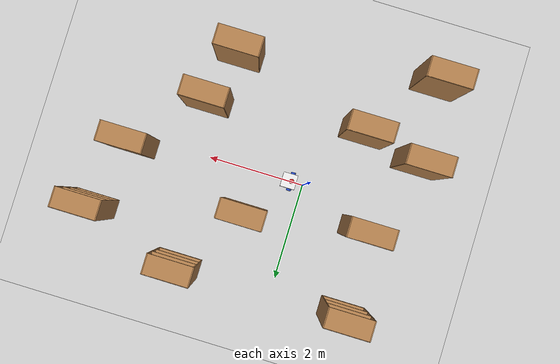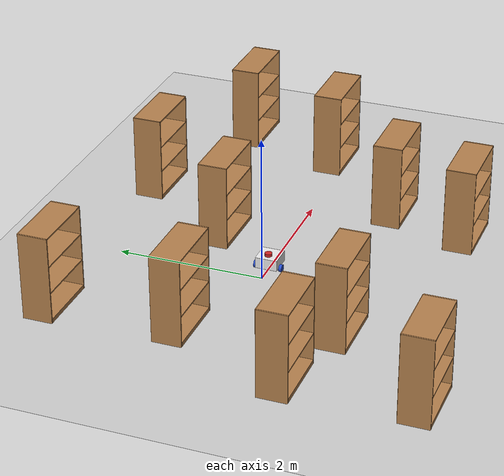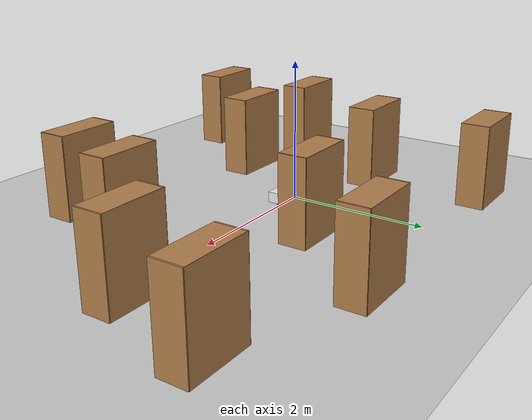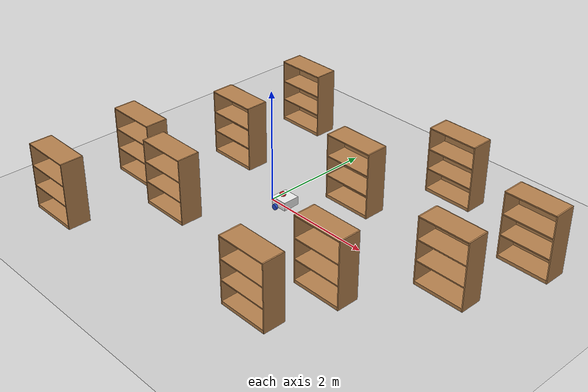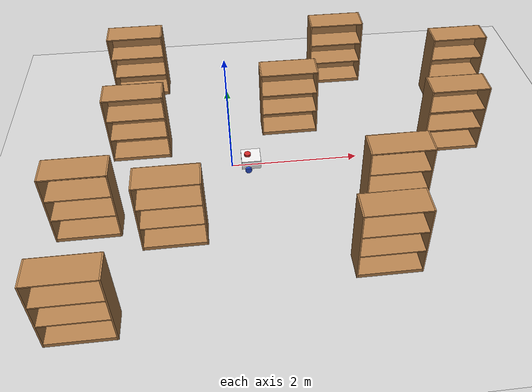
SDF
<sdf version="1.7">
 <world name="default">
  <light name="sun" type="directional">
   <pose>0 0 10 0 -0 0</pose>
   <diffuse>0.8 0.8 0.8 1</diffuse>
   <specular>0.2 0.2 0.2 1</specular>
   <attenuation>
    <range>1000</range>
    <constant>0.9</constant>
    <linear>0.01</linear>
    <quadratic>0.001</quadratic>
   </attenuation>
   <direction>-0.5 0.1 -0.9</direction>
   <spot><inner_angle>0</inner_angle><outer_angle>0</outer_angle><falloff>0</falloff></spot>
  </light>
  <model name="ground_plane">
   <static>1</static>
   <link name="link">
    <collision name="collision">
     <geometry><plane><normal>0 0 1</normal><size>100 100</size></plane></geometry>
     <surface>
      <contact><collide_bitmask>65535</collide_bitmask></contact>
      <friction><ode><mu>100</mu><mu2>50</mu2></ode></friction>
     </surface>
    </collision>
    <visual name="visual">
     <cast_shadows>0</cast_shadows>
     <geometry><plane><normal>0 0 1</normal><size>100 100</size></plane></geometry>
     <material>
      <script><uri>file://media/materials/scripts/gazebo.material</uri><name>Gazebo/Grey</name></script>
     </material>
    </visual>
   </link>
  </model>
  <gravity>0 0 -9.8</gravity>
  <magnetic_field>6e-06 2.3e-05 -4.2e-05</magnetic_field>
  <atmosphere type="adiabatic"/>
  <physics type="ode">
   <max_step_size>0.001</max_step_size>
   <real_time_factor>1</real_time_factor>
   <real_time_update_rate>1000</real_time_update_rate>
  </physics>
  <scene><ambient>0.4 0.4 0.4 1</ambient><background>0.7 0.7 0.7 1</background><shadows>1</shadows></scene>
  <audio><device>default</device></audio>
  <spherical_coordinates>
   <surface_model>EARTH_WGS84</surface_model>
   <latitude_deg>0</latitude_deg>
   <longitude_deg>0</longitude_deg>
   <elevation>0</elevation>
   <heading_deg>0</heading_deg>
  </spherical_coordinates>
  <model name="my_bot">
   <link name="base_link">
    <inertial>
     <pose>0.055714 0 0.078571 0 -0 0</pose>
     <mass>0.7</mass>
     <inertia>
      <ixx>0.0064169</ixx>
      <ixy>0</ixy>
      <ixz>0.00118929</ixz>
      <iyy>0.00745405</iyy>
      <iyz>0</iyz>
      <izz>0.00876214</izz>
     </inertia>
    </inertial>
    <collision name="base_link_fixed_joint_lump__chassis_collision">
     <pose>0.05 0 0.075 0 -0 0</pose>
     <geometry><box><size>0.3 0.3 0.15</size></box></geometry>
    </collision>
    <collision name="base_link_fixed_joint_lump__caster_wheel_collision_1">
     <pose>0.14 0 0 0 -0 0</pose>
     <geometry><sphere><radius>0.05</radius></sphere></geometry>
     <surface><friction><ode><mu>0.001</mu><mu2>0.001</mu2></ode></friction></surface>
    </collision>
    <collision name="base_link_fixed_joint_lump__laser_frame_collision_2">
     <pose>0 0 0.175 0 -0 0</pose>
     <geometry><cylinder><length>0.04</length><radius>0.05</radius></cylinder></geometry>
    </collision>
    <visual name="base_link_fixed_joint_lump__chassis_visual">
     <pose>0.05 0 0.075 0 -0 0</pose>
     <geometry><box><size>0.3 0.3 0.15</size></box></geometry>
     <material>
      <script><name>Gazebo/White</name><uri>file://media/materials/scripts/gazebo.material</uri></script>
     </material>
    </visual>
    <visual name="base_link_fixed_joint_lump__caster_wheel_visual_1">
     <pose>0.14 0 0 0 -0 0</pose>
     <geometry><sphere><radius>0.05</radius></sphere></geometry>
     <material>
      <script><name>Gazebo/Black</name><uri>file://media/materials/scripts/gazebo.material</uri></script>
     </material>
    </visual>
    <visual name="base_link_fixed_joint_lump__laser_frame_visual_2">
     <pose>0 0 0.175 0 -0 0</pose>
     <geometry><cylinder><length>0.04</length><radius>0.05</radius></cylinder></geometry>
     <material>
      <script><name>Gazebo/Red</name><uri>file://media/materials/scripts/gazebo.material</uri></script>
     </material>
    </visual>
    <sensor name="laser" type="ray">
     <visualize>1</visualize>
     <update_rate>10</update_rate>
     <ray>
      <scan>
       <horizontal>
        <samples>360</samples>
        <min_angle>-3.14</min_angle>
        <max_angle>3.14</max_angle>
        <resolution>1</resolution>
       </horizontal>
       <vertical><samples>1</samples><min_angle>0</min_angle><max_angle>0</max_angle></vertical>
      </scan>
      <range><min>0.3</min><max>12</max></range>
     </ray>
     <plugin name="laser_controller" filename="libgazebo_ros_ray_sensor.so">
      <ros><argument>~/out:=scan</argument></ros>
      <output_type>sensor_msgs/LaserScan</output_type>
      <frame_name>laser_frame</frame_name>
     </plugin>
     <pose>0 0 0.175 0 -0 0</pose>
    </sensor>
   </link>
   <joint name="left_wheel_joint" type="revolute">
    <pose relative_to="base_link">0 0.175 0 -1.5708 0 0</pose>
    <parent>base_link</parent>
    <child>left_wheel</child>
    <axis>
     <xyz>0 0 1</xyz>
     <limit><lower>-1e+16</lower><upper>1e+16</upper></limit>
     <dynamics><spring_reference>0</spring_reference><spring_stiffness>0</spring_stiffness></dynamics>
    </axis>
   </joint>
   <link name="left_wheel">
    <pose relative_to="left_wheel_joint">0 0 0 0 -0 0</pose>
    <inertial>
     <mass>0.1</mass>
     <inertia>
      <ixx>8.33333e-05</ixx>
      <ixy>0</ixy>
      <ixz>0</ixz>
      <iyy>8.33333e-05</iyy>
      <iyz>0</iyz>
      <izz>0.000125</izz>
     </inertia>
    </inertial>
    <collision name="left_wheel_collision">
     <geometry><cylinder><length>0.04</length><radius>0.05</radius></cylinder></geometry>
    </collision>
    <visual name="left_wheel_visual">
     <geometry><cylinder><length>0.04</length><radius>0.05</radius></cylinder></geometry>
     <material>
      <script><name>Gazebo/Blue</name><uri>file://media/materials/scripts/gazebo.material</uri></script>
     </material>
    </visual>
   </link>
   <joint name="right_wheel_joint" type="revolute">
    <pose relative_to="base_link">0 -0.175 0 1.5708 -0 0</pose>
    <parent>base_link</parent>
    <child>right_wheel</child>
    <axis>
     <xyz>0 0 -1</xyz>
     <limit><lower>-1e+16</lower><upper>1e+16</upper></limit>
     <dynamics><spring_reference>0</spring_reference><spring_stiffness>0</spring_stiffness></dynamics>
    </axis>
   </joint>
   <link name="right_wheel">
    <pose relative_to="right_wheel_joint">0 0 0 0 -0 0</pose>
    <inertial>
     <mass>0.1</mass>
     <inertia>
      <ixx>8.33333e-05</ixx>
      <ixy>0</ixy>
      <ixz>0</ixz>
      <iyy>8.33333e-05</iyy>
      <iyz>0</iyz>
      <izz>0.000125</izz>
     </inertia>
    </inertial>
    <collision name="right_wheel_collision">
     <geometry><cylinder><length>0.04</length><radius>0.05</radius></cylinder></geometry>
    </collision>
    <visual name="right_wheel_visual">
     <geometry><cylinder><length>0.04</length><radius>0.05</radius></cylinder></geometry>
     <material>
      <script><name>Gazebo/Blue</name><uri>file://media/materials/scripts/gazebo.material</uri></script>
     </material>
    </visual>
   </link>
   <static>0</static>
   <plugin name="diff_drive" filename="libgazebo_ros_diff_drive.so">
    <left_joint>left_wheel_joint</left_joint>
    <right_joint>right_wheel_joint</right_joint>
    <wheel_separation>0.35</wheel_separation>
    <wheel_diameter>0.1</wheel_diameter>
    <max_wheel_torque>200</max_wheel_torque>
    <max_wheel_acceleration>10.0</max_wheel_acceleration>
    <odometry_frame>odom</odometry_frame>
    <robot_base_frame>base_link</robot_base_frame>
    <publish_odom>1</publish_odom>
    <publish_odom_tf>1</publish_odom_tf>
    <publish_wheel_tf>1</publish_wheel_tf>
   </plugin>
   <pose>0.253296 -0.00011 0.05 1e-06 8e-06 0.003134</pose>
  </model>
  <model name="bookshelf">
   <static>1</static>
   <link name="link">
    <inertial><mass>1</mass></inertial>
    <collision name="back">
     <pose>0 0.005 0.6 0 -0 0</pose>
     <geometry><box><size>0.9 0.01 1.2</size></box></geometry>
    </collision>
    <visual name="visual1">
     <pose>0 0.005 0.6 0 -0 0</pose>
     <geometry><box><size>0.9 0.01 1.2</size></box></geometry>
     <material>
      <script><uri>file://media/materials/scripts/gazebo.material</uri><name>Gazebo/Wood</name></script>
     </material>
    </visual>
    <collision name="left_side">
     <pose>0.45 -0.195 0.6 0 -0 0</pose>
     <geometry><box><size>0.02 0.4 1.2</size></box></geometry>
    </collision>
    <visual name="visual2">
     <pose>0.45 -0.195 0.6 0 -0 0</pose>
     <geometry><box><size>0.02 0.4 1.2</size></box></geometry>
     <material>
      <script><uri>file://media/materials/scripts/gazebo.material</uri><name>Gazebo/Wood</name></script>
     </material>
    </visual>
    <collision name="right_side">
     <pose>-0.45 -0.195 0.6 0 -0 0</pose>
     <geometry><box><size>0.02 0.4 1.2</size></box></geometry>
    </collision>
    <visual name="visual3">
     <pose>-0.45 -0.195 0.6 0 -0 0</pose>
     <geometry><box><size>0.02 0.4 1.2</size></box></geometry>
     <material>
      <script><uri>file://media/materials/scripts/gazebo.material</uri><name>Gazebo/Wood</name></script>
     </material>
    </visual>
    <collision name="bottom">
     <pose>0 -0.195 0.03 0 -0 0</pose>
     <geometry><box><size>0.88 0.4 0.06</size></box></geometry>
    </collision>
    <visual name="visual4">
     <pose>0 -0.195 0.03 0 -0 0</pose>
     <geometry><box><size>0.88 0.4 0.06</size></box></geometry>
     <material>
      <script><uri>file://media/materials/scripts/gazebo.material</uri><name>Gazebo/Wood</name></script>
     </material>
    </visual>
    <collision name="top">
     <pose>0 -0.195 1.19 0 -0 0</pose>
     <geometry><box><size>0.88 0.4 0.02</size></box></geometry>
    </collision>
    <visual name="visual5">
     <pose>0 -0.195 1.19 0 -0 0</pose>
     <geometry><box><size>0.88 0.4 0.02</size></box></geometry>
     <material>
      <script><uri>file://media/materials/scripts/gazebo.material</uri><name>Gazebo/Wood</name></script>
     </material>
    </visual>
    <collision name="low_shelf">
     <pose>0 -0.195 0.43 0 -0 0</pose>
     <geometry><box><size>0.88 0.4 0.02</size></box></geometry>
    </collision>
    <visual name="visual6">
     <pose>0 -0.195 0.43 0 -0 0</pose>
     <geometry><box><size>0.88 0.4 0.02</size></box></geometry>
     <material>
      <script><uri>file://media/materials/scripts/gazebo.material</uri><name>Gazebo/Wood</name></script>
     </material>
    </visual>
    <collision name="high_shelf">
     <pose>0 -0.195 0.8 0 -0 0</pose>
     <geometry><box><size>0.88 0.4 0.02</size></box></geometry>
    </collision>
    <visual name="visual7">
     <pose>0 -0.195 0.8 0 -0 0</pose>
     <geometry><box><size>0.88 0.4 0.02</size></box></geometry>
     <material>
      <script><uri>file://media/materials/scripts/gazebo.material</uri><name>Gazebo/Wood</name></script>
     </material>
    </visual>
   </link>
   <pose>-1.42125 0.727346 0 0 -0 0</pose>
  </model>
  <model name="bookshelf_clone">
   <static>1</static>
   <link name="link">
    <inertial><mass>1</mass></inertial>
    <collision name="back">
     <pose>0 0.005 0.6 0 -0 0</pose>
     <geometry><box><size>0.9 0.01 1.2</size></box></geometry>
    </collision>
    <visual name="visual1">
     <pose>0 0.005 0.6 0 -0 0</pose>
     <geometry><box><size>0.9 0.01 1.2</size></box></geometry>
     <material>
      <script><uri>file://media/materials/scripts/gazebo.material</uri><name>Gazebo/Wood</name></script>
     </material>
    </visual>
    <collision name="left_side">
     <pose>0.45 -0.195 0.6 0 -0 0</pose>
     <geometry><box><size>0.02 0.4 1.2</size></box></geometry>
    </collision>
    <visual name="visual2">
     <pose>0.45 -0.195 0.6 0 -0 0</pose>
     <geometry><box><size>0.02 0.4 1.2</size></box></geometry>
     <material>
      <script><uri>file://media/materials/scripts/gazebo.material</uri><name>Gazebo/Wood</name></script>
     </material>
    </visual>
    <collision name="right_side">
     <pose>-0.45 -0.195 0.6 0 -0 0</pose>
     <geometry><box><size>0.02 0.4 1.2</size></box></geometry>
    </collision>
    <visual name="visual3">
     <pose>-0.45 -0.195 0.6 0 -0 0</pose>
     <geometry><box><size>0.02 0.4 1.2</size></box></geometry>
     <material>
      <script><uri>file://media/materials/scripts/gazebo.material</uri><name>Gazebo/Wood</name></script>
     </material>
    </visual>
    <collision name="bottom">
     <pose>0 -0.195 0.03 0 -0 0</pose>
     <geometry><box><size>0.88 0.4 0.06</size></box></geometry>
    </collision>
    <visual name="visual4">
     <pose>0 -0.195 0.03 0 -0 0</pose>
     <geometry><box><size>0.88 0.4 0.06</size></box></geometry>
     <material>
      <script><uri>file://media/materials/scripts/gazebo.material</uri><name>Gazebo/Wood</name></script>
     </material>
    </visual>
    <collision name="top">
     <pose>0 -0.195 1.19 0 -0 0</pose>
     <geometry><box><size>0.88 0.4 0.02</size></box></geometry>
    </collision>
    <visual name="visual5">
     <pose>0 -0.195 1.19 0 -0 0</pose>
     <geometry><box><size>0.88 0.4 0.02</size></box></geometry>
     <material>
      <script><uri>file://media/materials/scripts/gazebo.material</uri><name>Gazebo/Wood</name></script>
     </material>
    </visual>
    <collision name="low_shelf">
     <pose>0 -0.195 0.43 0 -0 0</pose>
     <geometry><box><size>0.88 0.4 0.02</size></box></geometry>
    </collision>
    <visual name="visual6">
     <pose>0 -0.195 0.43 0 -0 0</pose>
     <geometry><box><size>0.88 0.4 0.02</size></box></geometry>
     <material>
      <script><uri>file://media/materials/scripts/gazebo.material</uri><name>Gazebo/Wood</name></script>
     </material>
    </visual>
    <collision name="high_shelf">
     <pose>0 -0.195 0.8 0 -0 0</pose>
     <geometry><box><size>0.88 0.4 0.02</size></box></geometry>
    </collision>
    <visual name="visual7">
     <pose>0 -0.195 0.8 0 -0 0</pose>
     <geometry><box><size>0.88 0.4 0.02</size></box></geometry>
     <material>
      <script><uri>file://media/materials/scripts/gazebo.material</uri><name>Gazebo/Wood</name></script>
     </material>
    </visual>
   </link>
   <pose>-0.867211 -1.18613 0 0 -0 0</pose>
  </model>
  <model name="bookshelf_clone_0">
   <static>1</static>
   <link name="link">
    <inertial><mass>1</mass></inertial>
    <collision name="back">
     <pose>0 0.005 0.6 0 -0 0</pose>
     <geometry><box><size>0.9 0.01 1.2</size></box></geometry>
    </collision>
    <visual name="visual1">
     <pose>0 0.005 0.6 0 -0 0</pose>
     <geometry><box><size>0.9 0.01 1.2</size></box></geometry>
     <material>
      <script><uri>file://media/materials/scripts/gazebo.material</uri><name>Gazebo/Wood</name></script>
     </material>
    </visual>
    <collision name="left_side">
     <pose>0.45 -0.195 0.6 0 -0 0</pose>
     <geometry><box><size>0.02 0.4 1.2</size></box></geometry>
    </collision>
    <visual name="visual2">
     <pose>0.45 -0.195 0.6 0 -0 0</pose>
     <geometry><box><size>0.02 0.4 1.2</size></box></geometry>
     <material>
      <script><uri>file://media/materials/scripts/gazebo.material</uri><name>Gazebo/Wood</name></script>
     </material>
    </visual>
    <collision name="right_side">
     <pose>-0.45 -0.195 0.6 0 -0 0</pose>
     <geometry><box><size>0.02 0.4 1.2</size></box></geometry>
    </collision>
    <visual name="visual3">
     <pose>-0.45 -0.195 0.6 0 -0 0</pose>
     <geometry><box><size>0.02 0.4 1.2</size></box></geometry>
     <material>
      <script><uri>file://media/materials/scripts/gazebo.material</uri><name>Gazebo/Wood</name></script>
     </material>
    </visual>
    <collision name="bottom">
     <pose>0 -0.195 0.03 0 -0 0</pose>
     <geometry><box><size>0.88 0.4 0.06</size></box></geometry>
    </collision>
    <visual name="visual4">
     <pose>0 -0.195 0.03 0 -0 0</pose>
     <geometry><box><size>0.88 0.4 0.06</size></box></geometry>
     <material>
      <script><uri>file://media/materials/scripts/gazebo.material</uri><name>Gazebo/Wood</name></script>
     </material>
    </visual>
    <collision name="top">
     <pose>0 -0.195 1.19 0 -0 0</pose>
     <geometry><box><size>0.88 0.4 0.02</size></box></geometry>
    </collision>
    <visual name="visual5">
     <pose>0 -0.195 1.19 0 -0 0</pose>
     <geometry><box><size>0.88 0.4 0.02</size></box></geometry>
     <material>
      <script><uri>file://media/materials/scripts/gazebo.material</uri><name>Gazebo/Wood</name></script>
     </material>
    </visual>
    <collision name="low_shelf">
     <pose>0 -0.195 0.43 0 -0 0</pose>
     <geometry><box><size>0.88 0.4 0.02</size></box></geometry>
    </collision>
    <visual name="visual6">
     <pose>0 -0.195 0.43 0 -0 0</pose>
     <geometry><box><size>0.88 0.4 0.02</size></box></geometry>
     <material>
      <script><uri>file://media/materials/scripts/gazebo.material</uri><name>Gazebo/Wood</name></script>
     </material>
    </visual>
    <collision name="high_shelf">
     <pose>0 -0.195 0.8 0 -0 0</pose>
     <geometry><box><size>0.88 0.4 0.02</size></box></geometry>
    </collision>
    <visual name="visual7">
     <pose>0 -0.195 0.8 0 -0 0</pose>
     <geometry><box><size>0.88 0.4 0.02</size></box></geometry>
     <material>
      <script><uri>file://media/materials/scripts/gazebo.material</uri><name>Gazebo/Wood</name></script>
     </material>
    </visual>
   </link>
   <pose>2.34102 -0.896521 0 0 -0 0</pose>
  </model>
  <model name="bookshelf_clone_1">
   <static>1</static>
   <link name="link">
    <inertial><mass>1</mass></inertial>
    <collision name="back">
     <pose>0 0.005 0.6 0 -0 0</pose>
     <geometry><box><size>0.9 0.01 1.2</size></box></geometry>
    </collision>
    <visual name="visual1">
     <pose>0 0.005 0.6 0 -0 0</pose>
     <geometry><box><size>0.9 0.01 1.2</size></box></geometry>
     <material>
      <script><uri>file://media/materials/scripts/gazebo.material</uri><name>Gazebo/Wood</name></script>
     </material>
    </visual>
    <collision name="left_side">
     <pose>0.45 -0.195 0.6 0 -0 0</pose>
     <geometry><box><size>0.02 0.4 1.2</size></box></geometry>
    </collision>
    <visual name="visual2">
     <pose>0.45 -0.195 0.6 0 -0 0</pose>
     <geometry><box><size>0.02 0.4 1.2</size></box></geometry>
     <material>
      <script><uri>file://media/materials/scripts/gazebo.material</uri><name>Gazebo/Wood</name></script>
     </material>
    </visual>
    <collision name="right_side">
     <pose>-0.45 -0.195 0.6 0 -0 0</pose>
     <geometry><box><size>0.02 0.4 1.2</size></box></geometry>
    </collision>
    <visual name="visual3">
     <pose>-0.45 -0.195 0.6 0 -0 0</pose>
     <geometry><box><size>0.02 0.4 1.2</size></box></geometry>
     <material>
      <script><uri>file://media/materials/scripts/gazebo.material</uri><name>Gazebo/Wood</name></script>
     </material>
    </visual>
    <collision name="bottom">
     <pose>0 -0.195 0.03 0 -0 0</pose>
     <geometry><box><size>0.88 0.4 0.06</size></box></geometry>
    </collision>
    <visual name="visual4">
     <pose>0 -0.195 0.03 0 -0 0</pose>
     <geometry><box><size>0.88 0.4 0.06</size></box></geometry>
     <material>
      <script><uri>file://media/materials/scripts/gazebo.material</uri><name>Gazebo/Wood</name></script>
     </material>
    </visual>
    <collision name="top">
     <pose>0 -0.195 1.19 0 -0 0</pose>
     <geometry><box><size>0.88 0.4 0.02</size></box></geometry>
    </collision>
    <visual name="visual5">
     <pose>0 -0.195 1.19 0 -0 0</pose>
     <geometry><box><size>0.88 0.4 0.02</size></box></geometry>
     <material>
      <script><uri>file://media/materials/scripts/gazebo.material</uri><name>Gazebo/Wood</name></script>
     </material>
    </visual>
    <collision name="low_shelf">
     <pose>0 -0.195 0.43 0 -0 0</pose>
     <geometry><box><size>0.88 0.4 0.02</size></box></geometry>
    </collision>
    <visual name="visual6">
     <pose>0 -0.195 0.43 0 -0 0</pose>
     <geometry><box><size>0.88 0.4 0.02</size></box></geometry>
     <material>
      <script><uri>file://media/materials/scripts/gazebo.material</uri><name>Gazebo/Wood</name></script>
     </material>
    </visual>
    <collision name="high_shelf">
     <pose>0 -0.195 0.8 0 -0 0</pose>
     <geometry><box><size>0.88 0.4 0.02</size></box></geometry>
    </collision>
    <visual name="visual7">
     <pose>0 -0.195 0.8 0 -0 0</pose>
     <geometry><box><size>0.88 0.4 0.02</size></box></geometry>
     <material>
      <script><uri>file://media/materials/scripts/gazebo.material</uri><name>Gazebo/Wood</name></script>
     </material>
    </visual>
   </link>
   <pose>2 2.47604 0 0 -0 0</pose>
  </model>
  <model name="bookshelf_clone_2">
   <static>1</static>
   <link name="link">
    <inertial><mass>1</mass></inertial>
    <collision name="back">
     <pose>0 0.005 0.6 0 -0 0</pose>
     <geometry><box><size>0.9 0.01 1.2</size></box></geometry>
    </collision>
    <visual name="visual1">
     <pose>0 0.005 0.6 0 -0 0</pose>
     <geometry><box><size>0.9 0.01 1.2</size></box></geometry>
     <material>
      <script><uri>file://media/materials/scripts/gazebo.material</uri><name>Gazebo/Wood</name></script>
     </material>
    </visual>
    <collision name="left_side">
     <pose>0.45 -0.195 0.6 0 -0 0</pose>
     <geometry><box><size>0.02 0.4 1.2</size></box></geometry>
    </collision>
    <visual name="visual2">
     <pose>0.45 -0.195 0.6 0 -0 0</pose>
     <geometry><box><size>0.02 0.4 1.2</size></box></geometry>
     <material>
      <script><uri>file://media/materials/scripts/gazebo.material</uri><name>Gazebo/Wood</name></script>
     </material>
    </visual>
    <collision name="right_side">
     <pose>-0.45 -0.195 0.6 0 -0 0</pose>
     <geometry><box><size>0.02 0.4 1.2</size></box></geometry>
    </collision>
    <visual name="visual3">
     <pose>-0.45 -0.195 0.6 0 -0 0</pose>
     <geometry><box><size>0.02 0.4 1.2</size></box></geometry>
     <material>
      <script><uri>file://media/materials/scripts/gazebo.material</uri><name>Gazebo/Wood</name></script>
     </material>
    </visual>
    <collision name="bottom">
     <pose>0 -0.195 0.03 0 -0 0</pose>
     <geometry><box><size>0.88 0.4 0.06</size></box></geometry>
    </collision>
    <visual name="visual4">
     <pose>0 -0.195 0.03 0 -0 0</pose>
     <geometry><box><size>0.88 0.4 0.06</size></box></geometry>
     <material>
      <script><uri>file://media/materials/scripts/gazebo.material</uri><name>Gazebo/Wood</name></script>
     </material>
    </visual>
    <collision name="top">
     <pose>0 -0.195 1.19 0 -0 0</pose>
     <geometry><box><size>0.88 0.4 0.02</size></box></geometry>
    </collision>
    <visual name="visual5">
     <pose>0 -0.195 1.19 0 -0 0</pose>
     <geometry><box><size>0.88 0.4 0.02</size></box></geometry>
     <material>
      <script><uri>file://media/materials/scripts/gazebo.material</uri><name>Gazebo/Wood</name></script>
     </material>
    </visual>
    <collision name="low_shelf">
     <pose>0 -0.195 0.43 0 -0 0</pose>
     <geometry><box><size>0.88 0.4 0.02</size></box></geometry>
    </collision>
    <visual name="visual6">
     <pose>0 -0.195 0.43 0 -0 0</pose>
     <geometry><box><size>0.88 0.4 0.02</size></box></geometry>
     <material>
      <script><uri>file://media/materials/scripts/gazebo.material</uri><name>Gazebo/Wood</name></script>
     </material>
    </visual>
    <collision name="high_shelf">
     <pose>0 -0.195 0.8 0 -0 0</pose>
     <geometry><box><size>0.88 0.4 0.02</size></box></geometry>
    </collision>
    <visual name="visual7">
     <pose>0 -0.195 0.8 0 -0 0</pose>
     <geometry><box><size>0.88 0.4 0.02</size></box></geometry>
     <material>
      <script><uri>file://media/materials/scripts/gazebo.material</uri><name>Gazebo/Wood</name></script>
     </material>
    </visual>
   </link>
   <pose>2 -2 0 0 -0 0</pose>
  </model>
  <model name="bookshelf_clone_3">
   <static>1</static>
   <link name="link">
    <inertial><mass>1</mass></inertial>
    <collision name="back">
     <pose>0 0.005 0.6 0 -0 0</pose>
     <geometry><box><size>0.9 0.01 1.2</size></box></geometry>
    </collision>
    <visual name="visual1">
     <pose>0 0.005 0.6 0 -0 0</pose>
     <geometry><box><size>0.9 0.01 1.2</size></box></geometry>
     <material>
      <script><uri>file://media/materials/scripts/gazebo.material</uri><name>Gazebo/Wood</name></script>
     </material>
    </visual>
    <collision name="left_side">
     <pose>0.45 -0.195 0.6 0 -0 0</pose>
     <geometry><box><size>0.02 0.4 1.2</size></box></geometry>
    </collision>
    <visual name="visual2">
     <pose>0.45 -0.195 0.6 0 -0 0</pose>
     <geometry><box><size>0.02 0.4 1.2</size></box></geometry>
     <material>
      <script><uri>file://media/materials/scripts/gazebo.material</uri><name>Gazebo/Wood</name></script>
     </material>
    </visual>
    <collision name="right_side">
     <pose>-0.45 -0.195 0.6 0 -0 0</pose>
     <geometry><box><size>0.02 0.4 1.2</size></box></geometry>
    </collision>
    <visual name="visual3">
     <pose>-0.45 -0.195 0.6 0 -0 0</pose>
     <geometry><box><size>0.02 0.4 1.2</size></box></geometry>
     <material>
      <script><uri>file://media/materials/scripts/gazebo.material</uri><name>Gazebo/Wood</name></script>
     </material>
    </visual>
    <collision name="bottom">
     <pose>0 -0.195 0.03 0 -0 0</pose>
     <geometry><box><size>0.88 0.4 0.06</size></box></geometry>
    </collision>
    <visual name="visual4">
     <pose>0 -0.195 0.03 0 -0 0</pose>
     <geometry><box><size>0.88 0.4 0.06</size></box></geometry>
     <material>
      <script><uri>file://media/materials/scripts/gazebo.material</uri><name>Gazebo/Wood</name></script>
     </material>
    </visual>
    <collision name="top">
     <pose>0 -0.195 1.19 0 -0 0</pose>
     <geometry><box><size>0.88 0.4 0.02</size></box></geometry>
    </collision>
    <visual name="visual5">
     <pose>0 -0.195 1.19 0 -0 0</pose>
     <geometry><box><size>0.88 0.4 0.02</size></box></geometry>
     <material>
      <script><uri>file://media/materials/scripts/gazebo.material</uri><name>Gazebo/Wood</name></script>
     </material>
    </visual>
    <collision name="low_shelf">
     <pose>0 -0.195 0.43 0 -0 0</pose>
     <geometry><box><size>0.88 0.4 0.02</size></box></geometry>
    </collision>
    <visual name="visual6">
     <pose>0 -0.195 0.43 0 -0 0</pose>
     <geometry><box><size>0.88 0.4 0.02</size></box></geometry>
     <material>
      <script><uri>file://media/materials/scripts/gazebo.material</uri><name>Gazebo/Wood</name></script>
     </material>
    </visual>
    <collision name="high_shelf">
     <pose>0 -0.195 0.8 0 -0 0</pose>
     <geometry><box><size>0.88 0.4 0.02</size></box></geometry>
    </collision>
    <visual name="visual7">
     <pose>0 -0.195 0.8 0 -0 0</pose>
     <geometry><box><size>0.88 0.4 0.02</size></box></geometry>
     <material>
      <script><uri>file://media/materials/scripts/gazebo.material</uri><name>Gazebo/Wood</name></script>
     </material>
    </visual>
   </link>
   <pose>3.56496 0.368751 0 0 -0 0</pose>
  </model>
  <model name="bookshelf_clone_4">
   <static>1</static>
   <link name="link">
    <inertial><mass>1</mass></inertial>
    <collision name="back">
     <pose>0 0.005 0.6 0 -0 0</pose>
     <geometry><box><size>0.9 0.01 1.2</size></box></geometry>
    </collision>
    <visual name="visual1">
     <pose>0 0.005 0.6 0 -0 0</pose>
     <geometry><box><size>0.9 0.01 1.2</size></box></geometry>
     <material>
      <script><uri>file://media/materials/scripts/gazebo.material</uri><name>Gazebo/Wood</name></script>
     </material>
    </visual>
    <collision name="left_side">
     <pose>0.45 -0.195 0.6 0 -0 0</pose>
     <geometry><box><size>0.02 0.4 1.2</size></box></geometry>
    </collision>
    <visual name="visual2">
     <pose>0.45 -0.195 0.6 0 -0 0</pose>
     <geometry><box><size>0.02 0.4 1.2</size></box></geometry>
     <material>
      <script><uri>file://media/materials/scripts/gazebo.material</uri><name>Gazebo/Wood</name></script>
     </material>
    </visual>
    <collision name="right_side">
     <pose>-0.45 -0.195 0.6 0 -0 0</pose>
     <geometry><box><size>0.02 0.4 1.2</size></box></geometry>
    </collision>
    <visual name="visual3">
     <pose>-0.45 -0.195 0.6 0 -0 0</pose>
     <geometry><box><size>0.02 0.4 1.2</size></box></geometry>
     <material>
      <script><uri>file://media/materials/scripts/gazebo.material</uri><name>Gazebo/Wood</name></script>
     </material>
    </visual>
    <collision name="bottom">
     <pose>0 -0.195 0.03 0 -0 0</pose>
     <geometry><box><size>0.88 0.4 0.06</size></box></geometry>
    </collision>
    <visual name="visual4">
     <pose>0 -0.195 0.03 0 -0 0</pose>
     <geometry><box><size>0.88 0.4 0.06</size></box></geometry>
     <material>
      <script><uri>file://media/materials/scripts/gazebo.material</uri><name>Gazebo/Wood</name></script>
     </material>
    </visual>
    <collision name="top">
     <pose>0 -0.195 1.19 0 -0 0</pose>
     <geometry><box><size>0.88 0.4 0.02</size></box></geometry>
    </collision>
    <visual name="visual5">
     <pose>0 -0.195 1.19 0 -0 0</pose>
     <geometry><box><size>0.88 0.4 0.02</size></box></geometry>
     <material>
      <script><uri>file://media/materials/scripts/gazebo.material</uri><name>Gazebo/Wood</name></script>
     </material>
    </visual>
    <collision name="low_shelf">
     <pose>0 -0.195 0.43 0 -0 0</pose>
     <geometry><box><size>0.88 0.4 0.02</size></box></geometry>
    </collision>
    <visual name="visual6">
     <pose>0 -0.195 0.43 0 -0 0</pose>
     <geometry><box><size>0.88 0.4 0.02</size></box></geometry>
     <material>
      <script><uri>file://media/materials/scripts/gazebo.material</uri><name>Gazebo/Wood</name></script>
     </material>
    </visual>
    <collision name="high_shelf">
     <pose>0 -0.195 0.8 0 -0 0</pose>
     <geometry><box><size>0.88 0.4 0.02</size></box></geometry>
    </collision>
    <visual name="visual7">
     <pose>0 -0.195 0.8 0 -0 0</pose>
     <geometry><box><size>0.88 0.4 0.02</size></box></geometry>
     <material>
      <script><uri>file://media/materials/scripts/gazebo.material</uri><name>Gazebo/Wood</name></script>
     </material>
    </visual>
   </link>
   <pose>4.00166 1.79204 0 0 -0 0</pose>
  </model>
  <model name="bookshelf_clone_5">
   <static>1</static>
   <link name="link">
    <inertial><mass>1</mass></inertial>
    <collision name="back">
     <pose>0 0.005 0.6 0 -0 0</pose>
     <geometry><box><size>0.9 0.01 1.2</size></box></geometry>
    </collision>
    <visual name="visual1">
     <pose>0 0.005 0.6 0 -0 0</pose>
     <geometry><box><size>0.9 0.01 1.2</size></box></geometry>
     <material>
      <script><uri>file://media/materials/scripts/gazebo.material</uri><name>Gazebo/Wood</name></script>
     </material>
    </visual>
    <collision name="left_side">
     <pose>0.45 -0.195 0.6 0 -0 0</pose>
     <geometry><box><size>0.02 0.4 1.2</size></box></geometry>
    </collision>
    <visual name="visual2">
     <pose>0.45 -0.195 0.6 0 -0 0</pose>
     <geometry><box><size>0.02 0.4 1.2</size></box></geometry>
     <material>
      <script><uri>file://media/materials/scripts/gazebo.material</uri><name>Gazebo/Wood</name></script>
     </material>
    </visual>
    <collision name="right_side">
     <pose>-0.45 -0.195 0.6 0 -0 0</pose>
     <geometry><box><size>0.02 0.4 1.2</size></box></geometry>
    </collision>
    <visual name="visual3">
     <pose>-0.45 -0.195 0.6 0 -0 0</pose>
     <geometry><box><size>0.02 0.4 1.2</size></box></geometry>
     <material>
      <script><uri>file://media/materials/scripts/gazebo.material</uri><name>Gazebo/Wood</name></script>
     </material>
    </visual>
    <collision name="bottom">
     <pose>0 -0.195 0.03 0 -0 0</pose>
     <geometry><box><size>0.88 0.4 0.06</size></box></geometry>
    </collision>
    <visual name="visual4">
     <pose>0 -0.195 0.03 0 -0 0</pose>
     <geometry><box><size>0.88 0.4 0.06</size></box></geometry>
     <material>
      <script><uri>file://media/materials/scripts/gazebo.material</uri><name>Gazebo/Wood</name></script>
     </material>
    </visual>
    <collision name="top">
     <pose>0 -0.195 1.19 0 -0 0</pose>
     <geometry><box><size>0.88 0.4 0.02</size></box></geometry>
    </collision>
    <visual name="visual5">
     <pose>0 -0.195 1.19 0 -0 0</pose>
     <geometry><box><size>0.88 0.4 0.02</size></box></geometry>
     <material>
      <script><uri>file://media/materials/scripts/gazebo.material</uri><name>Gazebo/Wood</name></script>
     </material>
    </visual>
    <collision name="low_shelf">
     <pose>0 -0.195 0.43 0 -0 0</pose>
     <geometry><box><size>0.88 0.4 0.02</size></box></geometry>
    </collision>
    <visual name="visual6">
     <pose>0 -0.195 0.43 0 -0 0</pose>
     <geometry><box><size>0.88 0.4 0.02</size></box></geometry>
     <material>
      <script><uri>file://media/materials/scripts/gazebo.material</uri><name>Gazebo/Wood</name></script>
     </material>
    </visual>
    <collision name="high_shelf">
     <pose>0 -0.195 0.8 0 -0 0</pose>
     <geometry><box><size>0.88 0.4 0.02</size></box></geometry>
    </collision>
    <visual name="visual7">
     <pose>0 -0.195 0.8 0 -0 0</pose>
     <geometry><box><size>0.88 0.4 0.02</size></box></geometry>
     <material>
      <script><uri>file://media/materials/scripts/gazebo.material</uri><name>Gazebo/Wood</name></script>
     </material>
    </visual>
   </link>
   <pose>1.00797 1.09881 0 0 -0 0</pose>
  </model>
  <model name="bookshelf_clone_6">
   <static>1</static>
   <link name="link">
    <inertial><mass>1</mass></inertial>
    <collision name="back">
     <pose>0 0.005 0.6 0 -0 0</pose>
     <geometry><box><size>0.9 0.01 1.2</size></box></geometry>
    </collision>
    <visual name="visual1">
     <pose>0 0.005 0.6 0 -0 0</pose>
     <geometry><box><size>0.9 0.01 1.2</size></box></geometry>
     <material>
      <script><uri>file://media/materials/scripts/gazebo.material</uri><name>Gazebo/Wood</name></script>
     </material>
    </visual>
    <collision name="left_side">
     <pose>0.45 -0.195 0.6 0 -0 0</pose>
     <geometry><box><size>0.02 0.4 1.2</size></box></geometry>
    </collision>
    <visual name="visual2">
     <pose>0.45 -0.195 0.6 0 -0 0</pose>
     <geometry><box><size>0.02 0.4 1.2</size></box></geometry>
     <material>
      <script><uri>file://media/materials/scripts/gazebo.material</uri><name>Gazebo/Wood</name></script>
     </material>
    </visual>
    <collision name="right_side">
     <pose>-0.45 -0.195 0.6 0 -0 0</pose>
     <geometry><box><size>0.02 0.4 1.2</size></box></geometry>
    </collision>
    <visual name="visual3">
     <pose>-0.45 -0.195 0.6 0 -0 0</pose>
     <geometry><box><size>0.02 0.4 1.2</size></box></geometry>
     <material>
      <script><uri>file://media/materials/scripts/gazebo.material</uri><name>Gazebo/Wood</name></script>
     </material>
    </visual>
    <collision name="bottom">
     <pose>0 -0.195 0.03 0 -0 0</pose>
     <geometry><box><size>0.88 0.4 0.06</size></box></geometry>
    </collision>
    <visual name="visual4">
     <pose>0 -0.195 0.03 0 -0 0</pose>
     <geometry><box><size>0.88 0.4 0.06</size></box></geometry>
     <material>
      <script><uri>file://media/materials/scripts/gazebo.material</uri><name>Gazebo/Wood</name></script>
     </material>
    </visual>
    <collision name="top">
     <pose>0 -0.195 1.19 0 -0 0</pose>
     <geometry><box><size>0.88 0.4 0.02</size></box></geometry>
    </collision>
    <visual name="visual5">
     <pose>0 -0.195 1.19 0 -0 0</pose>
     <geometry><box><size>0.88 0.4 0.02</size></box></geometry>
     <material>
      <script><uri>file://media/materials/scripts/gazebo.material</uri><name>Gazebo/Wood</name></script>
     </material>
    </visual>
    <collision name="low_shelf">
     <pose>0 -0.195 0.43 0 -0 0</pose>
     <geometry><box><size>0.88 0.4 0.02</size></box></geometry>
    </collision>
    <visual name="visual6">
     <pose>0 -0.195 0.43 0 -0 0</pose>
     <geometry><box><size>0.88 0.4 0.02</size></box></geometry>
     <material>
      <script><uri>file://media/materials/scripts/gazebo.material</uri><name>Gazebo/Wood</name></script>
     </material>
    </visual>
    <collision name="high_shelf">
     <pose>0 -0.195 0.8 0 -0 0</pose>
     <geometry><box><size>0.88 0.4 0.02</size></box></geometry>
    </collision>
    <visual name="visual7">
     <pose>0 -0.195 0.8 0 -0 0</pose>
     <geometry><box><size>0.88 0.4 0.02</size></box></geometry>
     <material>
      <script><uri>file://media/materials/scripts/gazebo.material</uri><name>Gazebo/Wood</name></script>
     </material>
    </visual>
   </link>
   <pose>-2.08528 -0.887762 0 0 -0 0</pose>
  </model>
  <model name="bookshelf_clone_7">
   <static>1</static>
   <link name="link">
    <inertial><mass>1</mass></inertial>
    <collision name="back">
     <pose>0 0.005 0.6 0 -0 0</pose>
     <geometry><box><size>0.9 0.01 1.2</size></box></geometry>
    </collision>
    <visual name="visual1">
     <pose>0 0.005 0.6 0 -0 0</pose>
     <geometry><box><size>0.9 0.01 1.2</size></box></geometry>
     <material>
      <script><uri>file://media/materials/scripts/gazebo.material</uri><name>Gazebo/Wood</name></script>
     </material>
    </visual>
    <collision name="left_side">
     <pose>0.45 -0.195 0.6 0 -0 0</pose>
     <geometry><box><size>0.02 0.4 1.2</size></box></geometry>
    </collision>
    <visual name="visual2">
     <pose>0.45 -0.195 0.6 0 -0 0</pose>
     <geometry><box><size>0.02 0.4 1.2</size></box></geometry>
     <material>
      <script><uri>file://media/materials/scripts/gazebo.material</uri><name>Gazebo/Wood</name></script>
     </material>
    </visual>
    <collision name="right_side">
     <pose>-0.45 -0.195 0.6 0 -0 0</pose>
     <geometry><box><size>0.02 0.4 1.2</size></box></geometry>
    </collision>
    <visual name="visual3">
     <pose>-0.45 -0.195 0.6 0 -0 0</pose>
     <geometry><box><size>0.02 0.4 1.2</size></box></geometry>
     <material>
      <script><uri>file://media/materials/scripts/gazebo.material</uri><name>Gazebo/Wood</name></script>
     </material>
    </visual>
    <collision name="bottom">
     <pose>0 -0.195 0.03 0 -0 0</pose>
     <geometry><box><size>0.88 0.4 0.06</size></box></geometry>
    </collision>
    <visual name="visual4">
     <pose>0 -0.195 0.03 0 -0 0</pose>
     <geometry><box><size>0.88 0.4 0.06</size></box></geometry>
     <material>
      <script><uri>file://media/materials/scripts/gazebo.material</uri><name>Gazebo/Wood</name></script>
     </material>
    </visual>
    <collision name="top">
     <pose>0 -0.195 1.19 0 -0 0</pose>
     <geometry><box><size>0.88 0.4 0.02</size></box></geometry>
    </collision>
    <visual name="visual5">
     <pose>0 -0.195 1.19 0 -0 0</pose>
     <geometry><box><size>0.88 0.4 0.02</size></box></geometry>
     <material>
      <script><uri>file://media/materials/scripts/gazebo.material</uri><name>Gazebo/Wood</name></script>
     </material>
    </visual>
    <collision name="low_shelf">
     <pose>0 -0.195 0.43 0 -0 0</pose>
     <geometry><box><size>0.88 0.4 0.02</size></box></geometry>
    </collision>
    <visual name="visual6">
     <pose>0 -0.195 0.43 0 -0 0</pose>
     <geometry><box><size>0.88 0.4 0.02</size></box></geometry>
     <material>
      <script><uri>file://media/materials/scripts/gazebo.material</uri><name>Gazebo/Wood</name></script>
     </material>
    </visual>
    <collision name="high_shelf">
     <pose>0 -0.195 0.8 0 -0 0</pose>
     <geometry><box><size>0.88 0.4 0.02</size></box></geometry>
    </collision>
    <visual name="visual7">
     <pose>0 -0.195 0.8 0 -0 0</pose>
     <geometry><box><size>0.88 0.4 0.02</size></box></geometry>
     <material>
      <script><uri>file://media/materials/scripts/gazebo.material</uri><name>Gazebo/Wood</name></script>
     </material>
    </visual>
   </link>
   <pose>-2 -2.57505 0 0 -0 0</pose>
  </model>
  <model name="bookshelf_clone_8">
   <static>1</static>
   <link name="link">
    <inertial><mass>1</mass></inertial>
    <collision name="back">
     <pose>0 0.005 0.6 0 -0 0</pose>
     <geometry><box><size>0.9 0.01 1.2</size></box></geometry>
    </collision>
    <visual name="visual1">
     <pose>0 0.005 0.6 0 -0 0</pose>
     <geometry><box><size>0.9 0.01 1.2</size></box></geometry>
     <material>
      <script><uri>file://media/materials/scripts/gazebo.material</uri><name>Gazebo/Wood</name></script>
     </material>
    </visual>
    <collision name="left_side">
     <pose>0.45 -0.195 0.6 0 -0 0</pose>
     <geometry><box><size>0.02 0.4 1.2</size></box></geometry>
    </collision>
    <visual name="visual2">
     <pose>0.45 -0.195 0.6 0 -0 0</pose>
     <geometry><box><size>0.02 0.4 1.2</size></box></geometry>
     <material>
      <script><uri>file://media/materials/scripts/gazebo.material</uri><name>Gazebo/Wood</name></script>
     </material>
    </visual>
    <collision name="right_side">
     <pose>-0.45 -0.195 0.6 0 -0 0</pose>
     <geometry><box><size>0.02 0.4 1.2</size></box></geometry>
    </collision>
    <visual name="visual3">
     <pose>-0.45 -0.195 0.6 0 -0 0</pose>
     <geometry><box><size>0.02 0.4 1.2</size></box></geometry>
     <material>
      <script><uri>file://media/materials/scripts/gazebo.material</uri><name>Gazebo/Wood</name></script>
     </material>
    </visual>
    <collision name="bottom">
     <pose>0 -0.195 0.03 0 -0 0</pose>
     <geometry><box><size>0.88 0.4 0.06</size></box></geometry>
    </collision>
    <visual name="visual4">
     <pose>0 -0.195 0.03 0 -0 0</pose>
     <geometry><box><size>0.88 0.4 0.06</size></box></geometry>
     <material>
      <script><uri>file://media/materials/scripts/gazebo.material</uri><name>Gazebo/Wood</name></script>
     </material>
    </visual>
    <collision name="top">
     <pose>0 -0.195 1.19 0 -0 0</pose>
     <geometry><box><size>0.88 0.4 0.02</size></box></geometry>
    </collision>
    <visual name="visual5">
     <pose>0 -0.195 1.19 0 -0 0</pose>
     <geometry><box><size>0.88 0.4 0.02</size></box></geometry>
     <material>
      <script><uri>file://media/materials/scripts/gazebo.material</uri><name>Gazebo/Wood</name></script>
     </material>
    </visual>
    <collision name="low_shelf">
     <pose>0 -0.195 0.43 0 -0 0</pose>
     <geometry><box><size>0.88 0.4 0.02</size></box></geometry>
    </collision>
    <visual name="visual6">
     <pose>0 -0.195 0.43 0 -0 0</pose>
     <geometry><box><size>0.88 0.4 0.02</size></box></geometry>
     <material>
      <script><uri>file://media/materials/scripts/gazebo.material</uri><name>Gazebo/Wood</name></script>
     </material>
    </visual>
    <collision name="high_shelf">
     <pose>0 -0.195 0.8 0 -0 0</pose>
     <geometry><box><size>0.88 0.4 0.02</size></box></geometry>
    </collision>
    <visual name="visual7">
     <pose>0 -0.195 0.8 0 -0 0</pose>
     <geometry><box><size>0.88 0.4 0.02</size></box></geometry>
     <material>
      <script><uri>file://media/materials/scripts/gazebo.material</uri><name>Gazebo/Wood</name></script>
     </material>
    </visual>
   </link>
   <pose>-1.48676 2.4459 0 0 -0 0</pose>
  </model>
 </world>
</sdf>
